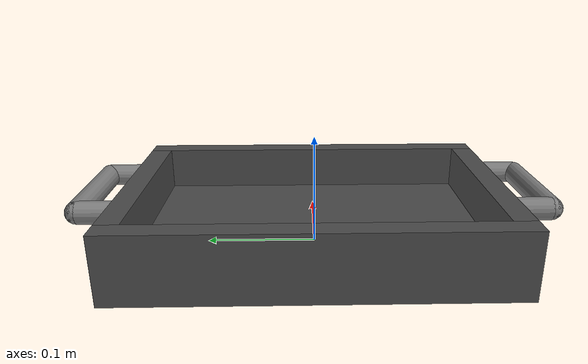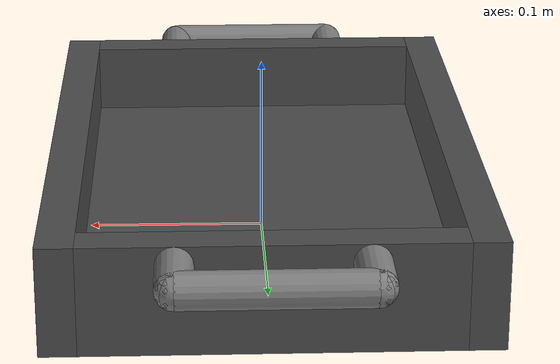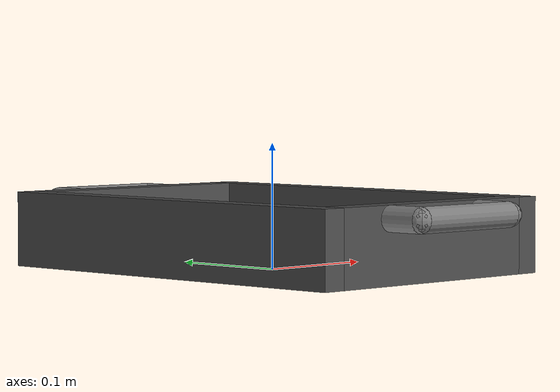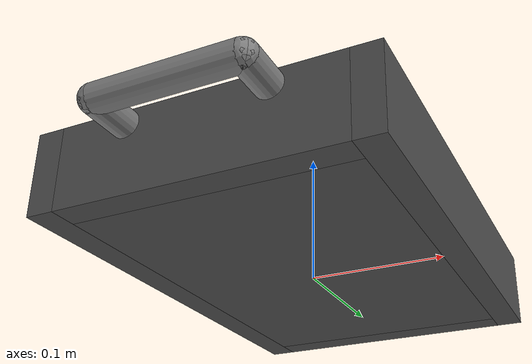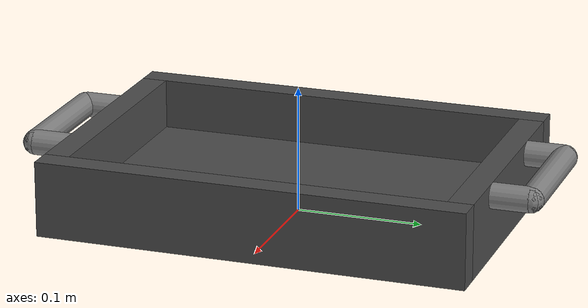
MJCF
<?xml version="1.0" encoding="utf-8"?>
<!-- from https://github.com/vikashplus/mj_envs/tree/master/mj_envs/hand_manipulation_suite/assets -->
<!-- Information about door can be found in this paper: https://arxiv.org/pdf/1709.10087.pdf -->

<mujoco model="microwave">
  <asset>
    <texture file="../textures/steel-brushed.png" type="cube" name="steel" />
    <material name="MatSteel" texture="steel" specular="1" shininess="0.3" rgba="0.9 0.9 0.9 1" />
  </asset>
  <worldbody>
    <body>
      <body name="object">
        <inertial pos="0 0 0" mass="1.47392" diaginertia="0.472637 0.580381 0.109316"/>
        <site name="origin" pos="0 0 0" rgba="0 0 0 0" size="0.005"/>

        <body name="body">
          <geom pos="0 0.0 0.01" size="0.1 0.15 0.01" type="box" friction="1 1 1" group="0" rgba="0.3 0.3 0.3 1"/>

          <geom pos="0  0.16 0.03" size="0.1 0.01 0.03" type="box" friction="1 1 1" group="0" rgba="0.3 0.3 0.3 1"/>
          <geom pos="0 -0.16 0.03" size="0.1 0.01 0.03" type="box" friction="1 1 1" group="0" rgba="0.3 0.3 0.3 1"/>
          <geom pos=" 0.11 0 0.03" size="0.01 0.17 0.03" type="box" friction="1 1 1" group="0" rgba="0.3 0.3 0.3 1"/>
          <geom pos="-0.11 0 0.03" size="0.01 0.17 0.03" type="box" friction="1 1 1" group="0" rgba="0.3 0.3 0.3 1"/>
        </body>

        <body name="left_handle" pos="0 -0.17 0.05">
          <geom fromto=" 0.05  0    0  0.05 -0.03 0" size="0.01" type="capsule" group="0"/>
          <geom fromto="-0.05  0    0 -0.05 -0.03 0" size="0.01" type="capsule" group="0"/>
          <geom fromto="-0.05 -0.03 0  0.05 -0.03 0" size="0.01" type="capsule" group="0"/>
          <site name="left_handle" pos="0 -0.03 0" size="0.02" rgba="0 0 1 0" />
        </body>

        <body name="right_handle" pos="0 0.17 0.05" quat="0 1 0 0">
          <geom fromto=" 0.05  0    0  0.05 -0.03 0" size="0.01" type="capsule" group="0"/>
          <geom fromto="-0.05  0    0 -0.05 -0.03 0" size="0.01" type="capsule" group="0"/>
          <geom fromto="-0.05 -0.03 0  0.05 -0.03 0" size="0.01" type="capsule" group="0"/>
          <site name="right_handle" pos="0 -0.03 0" size="0.02" rgba="0 0 1 0" />
        </body>

      </body>
      <site name="bottom_site" pos="0 0 -0.0207" rgba="0 0 0 0" size="0.005"/>
      <site name="top_site" pos="0 0 0.007" rgba="0 0 0 0" size="0.005"/>
      <site name="horizontal_radius_site" pos="0 0 0" rgba="0 0 0 0" size="0.003"/>
    </body>

  </worldbody>
</mujoco>
